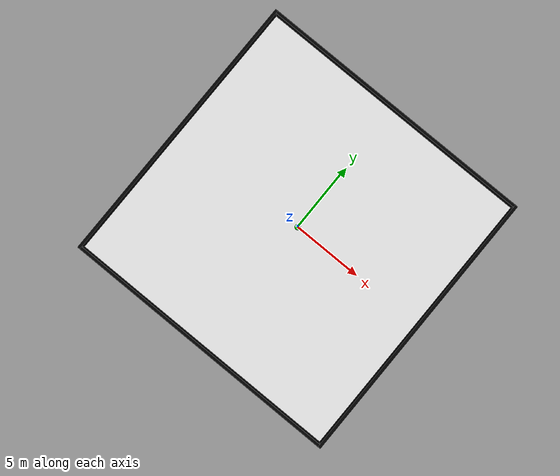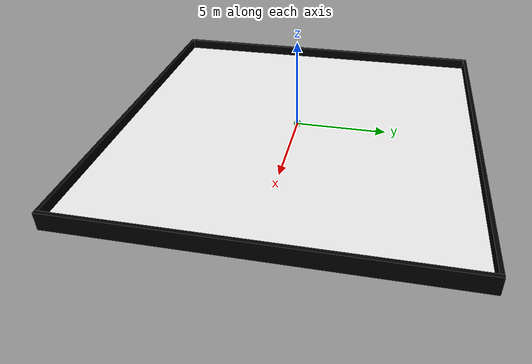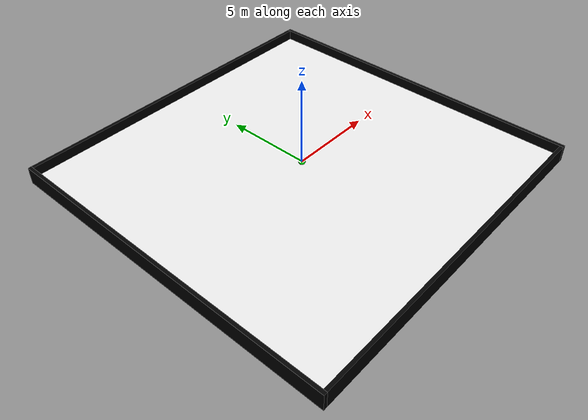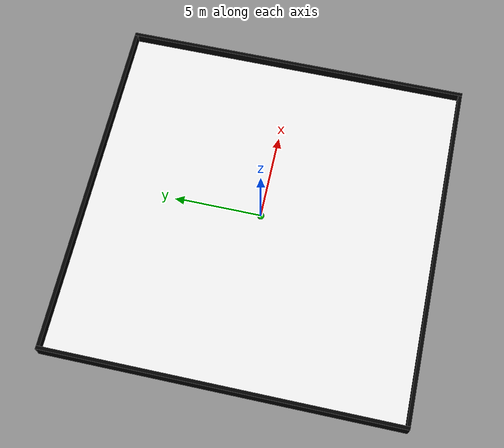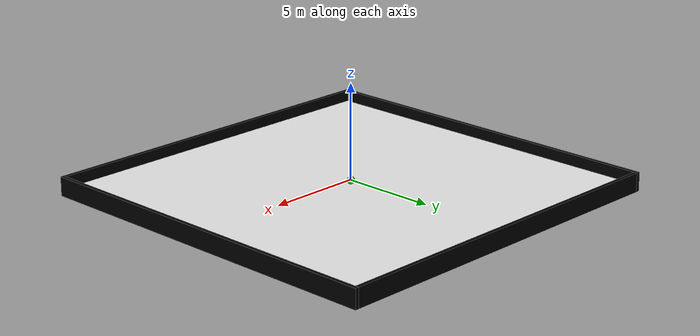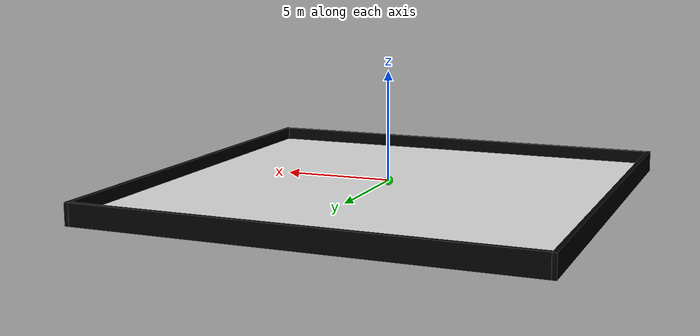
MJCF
<mujoco>
    <option timestep="0.005"/>
<default>
<geom rgba="0 0 0 1"/>
</default>
    <worldbody>
 	<light diffuse=".2 .2 .2" pos="0 0 20" dir="0 0 -1" mode="track"/>
	<body>
	  <geom name='floor' pos='0 0 -0.4' size='10 10 .1' mass="10000" type='box' condim='3' rgba=".9 .9 .9 1"/>
        <camera name="center" mode="fixed" pos="0 0 30" />
	</body>
	<body>
	  <geom name='wall1' pos='-10.1 0 -0.2' size='.1 10.1 .5' mass="10000" type='box' condim='3'/>
	</body>
	<body>
	  <geom name='wall2' pos='10.1 0 -0.2' size='.1 10.1 .5' mass="10000" type='box' condim='3'/>
	</body>
	<body>
	  <geom name='wall3' pos='0 -10 -0.2' size='10 .1 .5' mass="10000" type='box' condim='3'/>
	</body>
	<body>
	  <geom name='wall4' pos='0 10 -0.2' size='10 .1 .5' mass="10000" type='box' condim='3'/>
	</body>
 	<body name="prey" pos="0 0 0">
            <joint axis="1 0 0" damping="0" name="prey0" pos="0 0 0" type="slide"/>
            <joint axis="0 1 0" damping="0" name="prey1" pos="0 0 0" type="slide"/>
	　　<joint axis="0 0 1" damping="0" name="prey2" pos="0 0 0" type="slide"/>
            <geom type="sphere" size="0.2" mass="8" rgba="0 1 0 1"/>
        　　<site name="prey" pos="0 0 0" type="sphere" size="0.01"/>
	</body>
    </worldbody>

    <actuator>

        <motor gear="10" joint="prey0"/>
        <motor gear="10" joint="prey1"/>
	<motor gear="10" joint="prey2"/>

    </actuator>
</mujoco>
